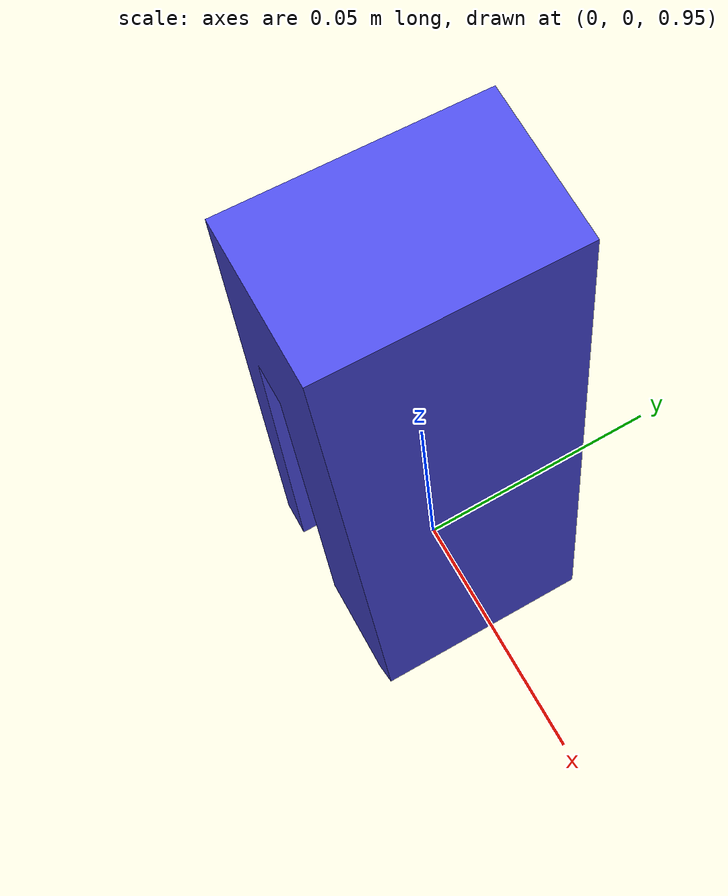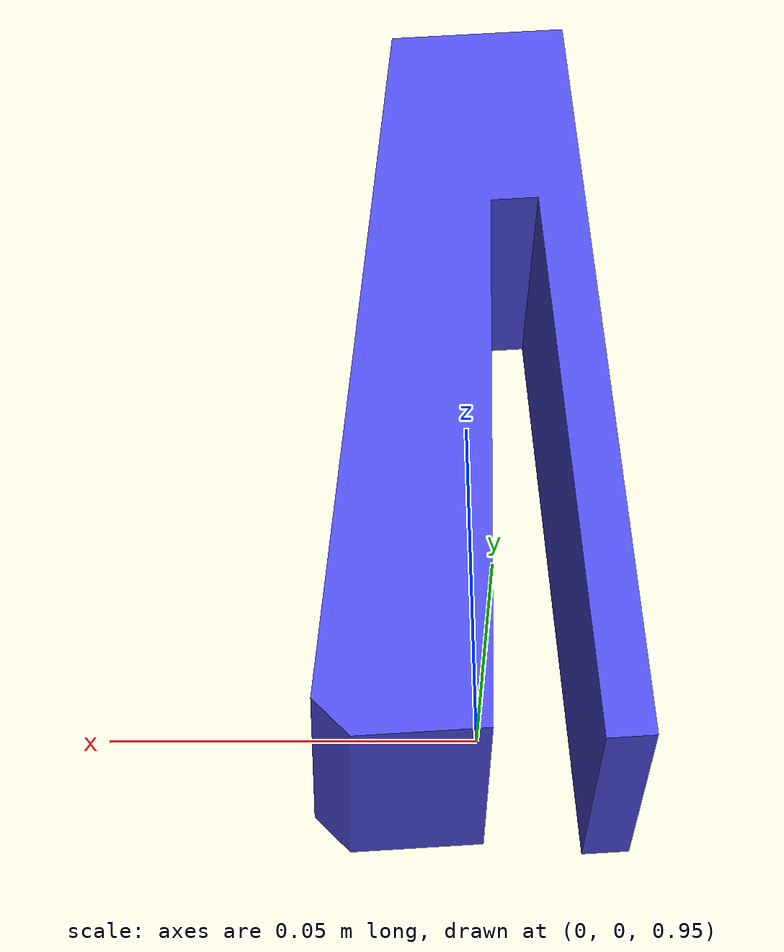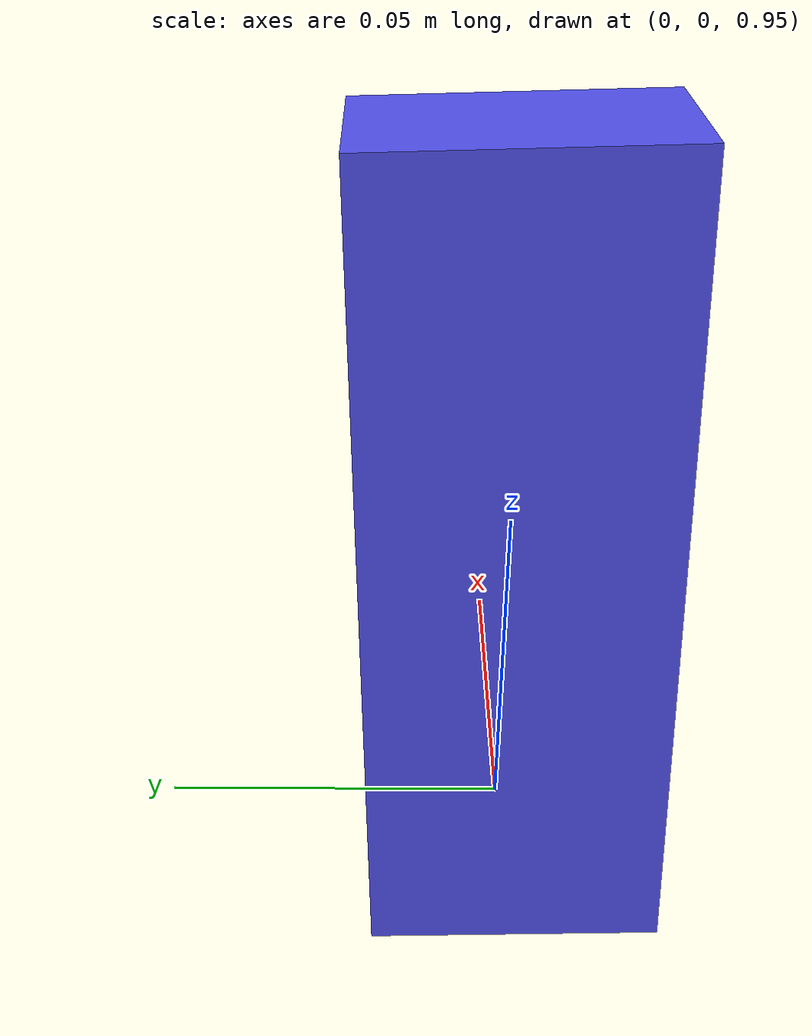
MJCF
<mujoco model="sprayflask">

  <asset>
    <material name="mat" rgba="0.3 0.3 0.9 1." specular="0.5" shininess="0.5"/>
    <mesh file="./objects/test/test_obj.obj" scale="1.0 1.0 1.0"/>
  </asset>

  <worldbody>
    <body name="manipulated_object" pos="0 0 1">
      <joint type="free" name="manipulated_object_dof"/>
      <geom type="mesh" mesh="test_obj" material="mat" euler="0 0 0" group="1"/>
    </body>
  </worldbody>
</mujoco>
